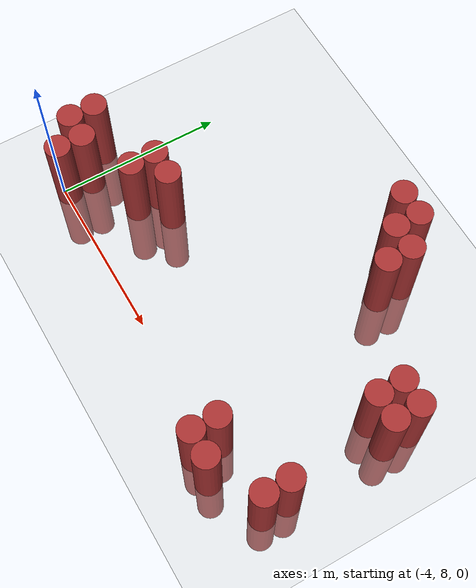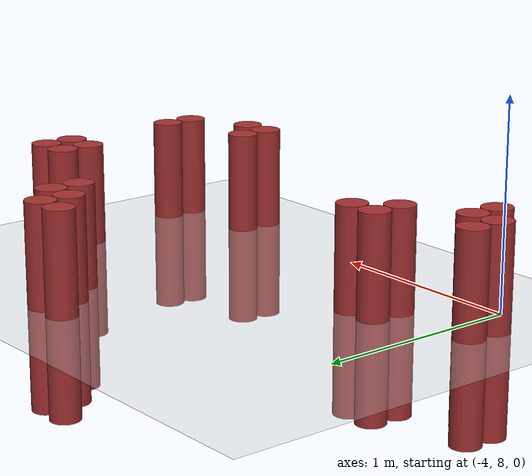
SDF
<sdf version="1.6">
 <world name="default">
  <model name="ground_plane">
   <static>1</static>
   <link name="link">
    <collision name="collision">
     <geometry><plane><normal>0 0 1</normal><size>100 100</size></plane></geometry>
     <surface><friction><ode><mu>100</mu><mu2>50</mu2></ode></friction></surface>
    </collision>
    <visual name="visual">
     <cast_shadows>0</cast_shadows>
     <geometry><plane><normal>0 0 1</normal><size>100 100</size></plane></geometry>
     <material>
      <script><uri>file://media/materials/scripts/gazebo.material</uri><name>Gazebo/Grey</name></script>
     </material>
    </visual>
   </link>
  </model>
  <model name="unit_cylinder_146">
   <static>1</static>
   <pose>-4.125000 8.175000 0.000000 0.000000 0.000000 0.000000</pose>
   <link name="link">
    <inertial>
     <mass>1</mass>
     <inertia><ixx>0.145833</ixx><ixy>0</ixy><ixz>0</ixz><iyy>0.145833</iyy><iyz>0</iyz><izz>0.125</izz></inertia>
    </inertial>
    <collision name="collision">
     <geometry><cylinder><radius>0.075000</radius><length>1</length></cylinder></geometry>
    </collision>
    <visual name="visual">
     <geometry><cylinder><radius>0.075000</radius><length>1</length></cylinder></geometry>
     <material>
      <ambient>0.648000 0.192000 0.192000 1</ambient>
      <diffuse>0.648000 0.192000 0.192000 1</diffuse>
     </material>
     <material>
      <script><name>Gazebo/Grey</name><uri>file://media/materials/scripts/gazebo.material</uri></script>
     </material>
    </visual>
    <sensor name="sensor_contact" type="contact"><contact><collision>collision</collision></contact></sensor>
   </link>
   <plugin filename="gz-sim-touchplugin-system" name="gz::sim::systems::TouchPlugin">
    <target>robot</target>
    <namespace>robot</namespace>
    <time>0.001</time>
    <enabled>true</enabled>
   </plugin>
  </model>
  <model name="unit_cylinder_147">
   <static>1</static>
   <pose>-4.125000 8.325000 0.000000 0.000000 0.000000 0.000000</pose>
   <link name="link">
    <inertial>
     <mass>1</mass>
     <inertia><ixx>0.145833</ixx><ixy>0</ixy><ixz>0</ixz><iyy>0.145833</iyy><iyz>0</iyz><izz>0.125</izz></inertia>
    </inertial>
    <collision name="collision">
     <geometry><cylinder><radius>0.075000</radius><length>1</length></cylinder></geometry>
    </collision>
    <visual name="visual">
     <geometry><cylinder><radius>0.075000</radius><length>1</length></cylinder></geometry>
     <material>
      <ambient>0.648000 0.192000 0.192000 1</ambient>
      <diffuse>0.648000 0.192000 0.192000 1</diffuse>
     </material>
     <material>
      <script><name>Gazebo/Grey</name><uri>file://media/materials/scripts/gazebo.material</uri></script>
     </material>
    </visual>
    <sensor name="sensor_contact" type="contact"><contact><collision>collision</collision></contact></sensor>
   </link>
   <plugin filename="gz-sim-touchplugin-system" name="gz::sim::systems::TouchPlugin">
    <target>robot</target>
    <namespace>robot</namespace>
    <time>0.001</time>
    <enabled>true</enabled>
   </plugin>
  </model>
  <model name="unit_cylinder_149">
   <static>1</static>
   <pose>-3.975000 8.025000 0.000000 0.000000 0.000000 0.000000</pose>
   <link name="link">
    <inertial>
     <mass>1</mass>
     <inertia><ixx>0.145833</ixx><ixy>0</ixy><ixz>0</ixz><iyy>0.145833</iyy><iyz>0</iyz><izz>0.125</izz></inertia>
    </inertial>
    <collision name="collision">
     <geometry><cylinder><radius>0.075000</radius><length>1</length></cylinder></geometry>
    </collision>
    <visual name="visual">
     <geometry><cylinder><radius>0.075000</radius><length>1</length></cylinder></geometry>
     <material>
      <ambient>0.648000 0.192000 0.192000 1</ambient>
      <diffuse>0.648000 0.192000 0.192000 1</diffuse>
     </material>
     <material>
      <script><name>Gazebo/Grey</name><uri>file://media/materials/scripts/gazebo.material</uri></script>
     </material>
    </visual>
    <sensor name="sensor_contact" type="contact"><contact><collision>collision</collision></contact></sensor>
   </link>
   <plugin filename="gz-sim-touchplugin-system" name="gz::sim::systems::TouchPlugin">
    <target>robot</target>
    <namespace>robot</namespace>
    <time>0.001</time>
    <enabled>true</enabled>
   </plugin>
  </model>
  <model name="unit_cylinder_150">
   <static>1</static>
   <pose>-3.975000 8.175000 0.000000 0.000000 0.000000 0.000000</pose>
   <link name="link">
    <inertial>
     <mass>1</mass>
     <inertia><ixx>0.145833</ixx><ixy>0</ixy><ixz>0</ixz><iyy>0.145833</iyy><iyz>0</iyz><izz>0.125</izz></inertia>
    </inertial>
    <collision name="collision">
     <geometry><cylinder><radius>0.075000</radius><length>1</length></cylinder></geometry>
    </collision>
    <visual name="visual">
     <geometry><cylinder><radius>0.075000</radius><length>1</length></cylinder></geometry>
     <material>
      <ambient>0.648000 0.192000 0.192000 1</ambient>
      <diffuse>0.648000 0.192000 0.192000 1</diffuse>
     </material>
     <material>
      <script><name>Gazebo/Grey</name><uri>file://media/materials/scripts/gazebo.material</uri></script>
     </material>
    </visual>
    <sensor name="sensor_contact" type="contact"><contact><collision>collision</collision></contact></sensor>
   </link>
   <plugin filename="gz-sim-touchplugin-system" name="gz::sim::systems::TouchPlugin">
    <target>robot</target>
    <namespace>robot</namespace>
    <time>0.001</time>
    <enabled>true</enabled>
   </plugin>
  </model>
  <model name="unit_cylinder_151">
   <static>1</static>
   <pose>-3.675000 8.325000 0.000000 0.000000 0.000000 0.000000</pose>
   <link name="link">
    <inertial>
     <mass>1</mass>
     <inertia><ixx>0.145833</ixx><ixy>0</ixy><ixz>0</ixz><iyy>0.145833</iyy><iyz>0</iyz><izz>0.125</izz></inertia>
    </inertial>
    <collision name="collision">
     <geometry><cylinder><radius>0.075000</radius><length>1</length></cylinder></geometry>
    </collision>
    <visual name="visual">
     <geometry><cylinder><radius>0.075000</radius><length>1</length></cylinder></geometry>
     <material>
      <ambient>0.648000 0.192000 0.192000 1</ambient>
      <diffuse>0.648000 0.192000 0.192000 1</diffuse>
     </material>
     <material>
      <script><name>Gazebo/Grey</name><uri>file://media/materials/scripts/gazebo.material</uri></script>
     </material>
    </visual>
    <sensor name="sensor_contact" type="contact"><contact><collision>collision</collision></contact></sensor>
   </link>
   <plugin filename="gz-sim-touchplugin-system" name="gz::sim::systems::TouchPlugin">
    <target>robot</target>
    <namespace>robot</namespace>
    <time>0.001</time>
    <enabled>true</enabled>
   </plugin>
  </model>
  <model name="unit_cylinder_152">
   <static>1</static>
   <pose>-3.675000 8.475000 0.000000 0.000000 0.000000 0.000000</pose>
   <link name="link">
    <inertial>
     <mass>1</mass>
     <inertia><ixx>0.145833</ixx><ixy>0</ixy><ixz>0</ixz><iyy>0.145833</iyy><iyz>0</iyz><izz>0.125</izz></inertia>
    </inertial>
    <collision name="collision">
     <geometry><cylinder><radius>0.075000</radius><length>1</length></cylinder></geometry>
    </collision>
    <visual name="visual">
     <geometry><cylinder><radius>0.075000</radius><length>1</length></cylinder></geometry>
     <material>
      <ambient>0.648000 0.192000 0.192000 1</ambient>
      <diffuse>0.648000 0.192000 0.192000 1</diffuse>
     </material>
     <material>
      <script><name>Gazebo/Grey</name><uri>file://media/materials/scripts/gazebo.material</uri></script>
     </material>
    </visual>
    <sensor name="sensor_contact" type="contact"><contact><collision>collision</collision></contact></sensor>
   </link>
   <plugin filename="gz-sim-touchplugin-system" name="gz::sim::systems::TouchPlugin">
    <target>robot</target>
    <namespace>robot</namespace>
    <time>0.001</time>
    <enabled>true</enabled>
   </plugin>
  </model>
  <model name="unit_cylinder_153">
   <static>1</static>
   <pose>-3.525000 8.475000 0.000000 0.000000 0.000000 0.000000</pose>
   <link name="link">
    <inertial>
     <mass>1</mass>
     <inertia><ixx>0.145833</ixx><ixy>0</ixy><ixz>0</ixz><iyy>0.145833</iyy><iyz>0</iyz><izz>0.125</izz></inertia>
    </inertial>
    <collision name="collision">
     <geometry><cylinder><radius>0.075000</radius><length>1</length></cylinder></geometry>
    </collision>
    <visual name="visual">
     <geometry><cylinder><radius>0.075000</radius><length>1</length></cylinder></geometry>
     <material>
      <ambient>0.648000 0.192000 0.192000 1</ambient>
      <diffuse>0.648000 0.192000 0.192000 1</diffuse>
     </material>
     <material>
      <script><name>Gazebo/Grey</name><uri>file://media/materials/scripts/gazebo.material</uri></script>
     </material>
    </visual>
    <sensor name="sensor_contact" type="contact"><contact><collision>collision</collision></contact></sensor>
   </link>
   <plugin filename="gz-sim-touchplugin-system" name="gz::sim::systems::TouchPlugin">
    <target>robot</target>
    <namespace>robot</namespace>
    <time>0.001</time>
    <enabled>true</enabled>
   </plugin>
  </model>
  <model name="unit_cylinder_164">
   <static>1</static>
   <pose>-2.775000 9.525000 0.000000 0.000000 0.000000 0.000000</pose>
   <link name="link">
    <inertial>
     <mass>1</mass>
     <inertia><ixx>0.145833</ixx><ixy>0</ixy><ixz>0</ixz><iyy>0.145833</iyy><iyz>0</iyz><izz>0.125</izz></inertia>
    </inertial>
    <collision name="collision">
     <geometry><cylinder><radius>0.075000</radius><length>1</length></cylinder></geometry>
    </collision>
    <visual name="visual">
     <geometry><cylinder><radius>0.075000</radius><length>1</length></cylinder></geometry>
     <material>
      <ambient>0.648000 0.192000 0.192000 1</ambient>
      <diffuse>0.648000 0.192000 0.192000 1</diffuse>
     </material>
     <material>
      <script><name>Gazebo/Grey</name><uri>file://media/materials/scripts/gazebo.material</uri></script>
     </material>
    </visual>
    <sensor name="sensor_contact" type="contact"><contact><collision>collision</collision></contact></sensor>
   </link>
   <plugin filename="gz-sim-touchplugin-system" name="gz::sim::systems::TouchPlugin">
    <target>robot</target>
    <namespace>robot</namespace>
    <time>0.001</time>
    <enabled>true</enabled>
   </plugin>
  </model>
  <model name="unit_cylinder_169">
   <static>1</static>
   <pose>-2.625000 9.375000 0.000000 0.000000 0.000000 0.000000</pose>
   <link name="link">
    <inertial>
     <mass>1</mass>
     <inertia><ixx>0.145833</ixx><ixy>0</ixy><ixz>0</ixz><iyy>0.145833</iyy><iyz>0</iyz><izz>0.125</izz></inertia>
    </inertial>
    <collision name="collision">
     <geometry><cylinder><radius>0.075000</radius><length>1</length></cylinder></geometry>
    </collision>
    <visual name="visual">
     <geometry><cylinder><radius>0.075000</radius><length>1</length></cylinder></geometry>
     <material>
      <ambient>0.648000 0.192000 0.192000 1</ambient>
      <diffuse>0.648000 0.192000 0.192000 1</diffuse>
     </material>
     <material>
      <script><name>Gazebo/Grey</name><uri>file://media/materials/scripts/gazebo.material</uri></script>
     </material>
    </visual>
    <sensor name="sensor_contact" type="contact"><contact><collision>collision</collision></contact></sensor>
   </link>
   <plugin filename="gz-sim-touchplugin-system" name="gz::sim::systems::TouchPlugin">
    <target>robot</target>
    <namespace>robot</namespace>
    <time>0.001</time>
    <enabled>true</enabled>
   </plugin>
  </model>
  <model name="unit_cylinder_170">
   <static>1</static>
   <pose>-2.625000 9.525000 0.000000 0.000000 0.000000 0.000000</pose>
   <link name="link">
    <inertial>
     <mass>1</mass>
     <inertia><ixx>0.145833</ixx><ixy>0</ixy><ixz>0</ixz><iyy>0.145833</iyy><iyz>0</iyz><izz>0.125</izz></inertia>
    </inertial>
    <collision name="collision">
     <geometry><cylinder><radius>0.075000</radius><length>1</length></cylinder></geometry>
    </collision>
    <visual name="visual">
     <geometry><cylinder><radius>0.075000</radius><length>1</length></cylinder></geometry>
     <material>
      <ambient>0.648000 0.192000 0.192000 1</ambient>
      <diffuse>0.648000 0.192000 0.192000 1</diffuse>
     </material>
     <material>
      <script><name>Gazebo/Grey</name><uri>file://media/materials/scripts/gazebo.material</uri></script>
     </material>
    </visual>
    <sensor name="sensor_contact" type="contact"><contact><collision>collision</collision></contact></sensor>
   </link>
   <plugin filename="gz-sim-touchplugin-system" name="gz::sim::systems::TouchPlugin">
    <target>robot</target>
    <namespace>robot</namespace>
    <time>0.001</time>
    <enabled>true</enabled>
   </plugin>
  </model>
  <model name="unit_cylinder_176">
   <static>1</static>
   <pose>-2.475000 9.225000 0.000000 0.000000 0.000000 0.000000</pose>
   <link name="link">
    <inertial>
     <mass>1</mass>
     <inertia><ixx>0.145833</ixx><ixy>0</ixy><ixz>0</ixz><iyy>0.145833</iyy><iyz>0</iyz><izz>0.125</izz></inertia>
    </inertial>
    <collision name="collision">
     <geometry><cylinder><radius>0.075000</radius><length>1</length></cylinder></geometry>
    </collision>
    <visual name="visual">
     <geometry><cylinder><radius>0.075000</radius><length>1</length></cylinder></geometry>
     <material>
      <ambient>0.648000 0.192000 0.192000 1</ambient>
      <diffuse>0.648000 0.192000 0.192000 1</diffuse>
     </material>
     <material>
      <script><name>Gazebo/Grey</name><uri>file://media/materials/scripts/gazebo.material</uri></script>
     </material>
    </visual>
    <sensor name="sensor_contact" type="contact"><contact><collision>collision</collision></contact></sensor>
   </link>
   <plugin filename="gz-sim-touchplugin-system" name="gz::sim::systems::TouchPlugin">
    <target>robot</target>
    <namespace>robot</namespace>
    <time>0.001</time>
    <enabled>true</enabled>
   </plugin>
  </model>
  <model name="unit_cylinder_177">
   <static>1</static>
   <pose>-2.475000 9.375000 0.000000 0.000000 0.000000 0.000000</pose>
   <link name="link">
    <inertial>
     <mass>1</mass>
     <inertia><ixx>0.145833</ixx><ixy>0</ixy><ixz>0</ixz><iyy>0.145833</iyy><iyz>0</iyz><izz>0.125</izz></inertia>
    </inertial>
    <collision name="collision">
     <geometry><cylinder><radius>0.075000</radius><length>1</length></cylinder></geometry>
    </collision>
    <visual name="visual">
     <geometry><cylinder><radius>0.075000</radius><length>1</length></cylinder></geometry>
     <material>
      <ambient>0.648000 0.192000 0.192000 1</ambient>
      <diffuse>0.648000 0.192000 0.192000 1</diffuse>
     </material>
     <material>
      <script><name>Gazebo/Grey</name><uri>file://media/materials/scripts/gazebo.material</uri></script>
     </material>
    </visual>
    <sensor name="sensor_contact" type="contact"><contact><collision>collision</collision></contact></sensor>
   </link>
   <plugin filename="gz-sim-touchplugin-system" name="gz::sim::systems::TouchPlugin">
    <target>robot</target>
    <namespace>robot</namespace>
    <time>0.001</time>
    <enabled>true</enabled>
   </plugin>
  </model>
  <model name="unit_cylinder_187">
   <static>1</static>
   <pose>-2.175000 7.875000 0.000000 0.000000 0.000000 0.000000</pose>
   <link name="link">
    <inertial>
     <mass>1</mass>
     <inertia><ixx>0.145833</ixx><ixy>0</ixy><ixz>0</ixz><iyy>0.145833</iyy><iyz>0</iyz><izz>0.125</izz></inertia>
    </inertial>
    <collision name="collision">
     <geometry><cylinder><radius>0.075000</radius><length>1</length></cylinder></geometry>
    </collision>
    <visual name="visual">
     <geometry><cylinder><radius>0.075000</radius><length>1</length></cylinder></geometry>
     <material>
      <ambient>0.648000 0.192000 0.192000 1</ambient>
      <diffuse>0.648000 0.192000 0.192000 1</diffuse>
     </material>
     <material>
      <script><name>Gazebo/Grey</name><uri>file://media/materials/scripts/gazebo.material</uri></script>
     </material>
    </visual>
    <sensor name="sensor_contact" type="contact"><contact><collision>collision</collision></contact></sensor>
   </link>
   <plugin filename="gz-sim-touchplugin-system" name="gz::sim::systems::TouchPlugin">
    <target>robot</target>
    <namespace>robot</namespace>
    <time>0.001</time>
    <enabled>true</enabled>
   </plugin>
  </model>
  <model name="unit_cylinder_188">
   <static>1</static>
   <pose>-2.175000 8.025000 0.000000 0.000000 0.000000 0.000000</pose>
   <link name="link">
    <inertial>
     <mass>1</mass>
     <inertia><ixx>0.145833</ixx><ixy>0</ixy><ixz>0</ixz><iyy>0.145833</iyy><iyz>0</iyz><izz>0.125</izz></inertia>
    </inertial>
    <collision name="collision">
     <geometry><cylinder><radius>0.075000</radius><length>1</length></cylinder></geometry>
    </collision>
    <visual name="visual">
     <geometry><cylinder><radius>0.075000</radius><length>1</length></cylinder></geometry>
     <material>
      <ambient>0.648000 0.192000 0.192000 1</ambient>
      <diffuse>0.648000 0.192000 0.192000 1</diffuse>
     </material>
     <material>
      <script><name>Gazebo/Grey</name><uri>file://media/materials/scripts/gazebo.material</uri></script>
     </material>
    </visual>
    <sensor name="sensor_contact" type="contact"><contact><collision>collision</collision></contact></sensor>
   </link>
   <plugin filename="gz-sim-touchplugin-system" name="gz::sim::systems::TouchPlugin">
    <target>robot</target>
    <namespace>robot</namespace>
    <time>0.001</time>
    <enabled>true</enabled>
   </plugin>
  </model>
  <model name="unit_cylinder_190">
   <static>1</static>
   <pose>-2.025000 7.875000 0.000000 0.000000 0.000000 0.000000</pose>
   <link name="link">
    <inertial>
     <mass>1</mass>
     <inertia><ixx>0.145833</ixx><ixy>0</ixy><ixz>0</ixz><iyy>0.145833</iyy><iyz>0</iyz><izz>0.125</izz></inertia>
    </inertial>
    <collision name="collision">
     <geometry><cylinder><radius>0.075000</radius><length>1</length></cylinder></geometry>
    </collision>
    <visual name="visual">
     <geometry><cylinder><radius>0.075000</radius><length>1</length></cylinder></geometry>
     <material>
      <ambient>0.648000 0.192000 0.192000 1</ambient>
      <diffuse>0.648000 0.192000 0.192000 1</diffuse>
     </material>
     <material>
      <script><name>Gazebo/Grey</name><uri>file://media/materials/scripts/gazebo.material</uri></script>
     </material>
    </visual>
    <sensor name="sensor_contact" type="contact"><contact><collision>collision</collision></contact></sensor>
   </link>
   <plugin filename="gz-sim-touchplugin-system" name="gz::sim::systems::TouchPlugin">
    <target>robot</target>
    <namespace>robot</namespace>
    <time>0.001</time>
    <enabled>true</enabled>
   </plugin>
  </model>
  <model name="unit_cylinder_198">
   <static>1</static>
   <pose>-1.875000 8.775000 0.000000 0.000000 0.000000 0.000000</pose>
   <link name="link">
    <inertial>
     <mass>1</mass>
     <inertia><ixx>0.145833</ixx><ixy>0</ixy><ixz>0</ixz><iyy>0.145833</iyy><iyz>0</iyz><izz>0.125</izz></inertia>
    </inertial>
    <collision name="collision">
     <geometry><cylinder><radius>0.075000</radius><length>1</length></cylinder></geometry>
    </collision>
    <visual name="visual">
     <geometry><cylinder><radius>0.075000</radius><length>1</length></cylinder></geometry>
     <material>
      <ambient>0.648000 0.192000 0.192000 1</ambient>
      <diffuse>0.648000 0.192000 0.192000 1</diffuse>
     </material>
     <material>
      <script><name>Gazebo/Grey</name><uri>file://media/materials/scripts/gazebo.material</uri></script>
     </material>
    </visual>
    <sensor name="sensor_contact" type="contact"><contact><collision>collision</collision></contact></sensor>
   </link>
   <plugin filename="gz-sim-touchplugin-system" name="gz::sim::systems::TouchPlugin">
    <target>robot</target>
    <namespace>robot</namespace>
    <time>0.001</time>
    <enabled>true</enabled>
   </plugin>
  </model>
  <model name="unit_cylinder_199">
   <static>1</static>
   <pose>-1.875000 8.925000 0.000000 0.000000 0.000000 0.000000</pose>
   <link name="link">
    <inertial>
     <mass>1</mass>
     <inertia><ixx>0.145833</ixx><ixy>0</ixy><ixz>0</ixz><iyy>0.145833</iyy><iyz>0</iyz><izz>0.125</izz></inertia>
    </inertial>
    <collision name="collision">
     <geometry><cylinder><radius>0.075000</radius><length>1</length></cylinder></geometry>
    </collision>
    <visual name="visual">
     <geometry><cylinder><radius>0.075000</radius><length>1</length></cylinder></geometry>
     <material>
      <ambient>0.648000 0.192000 0.192000 1</ambient>
      <diffuse>0.648000 0.192000 0.192000 1</diffuse>
     </material>
     <material>
      <script><name>Gazebo/Grey</name><uri>file://media/materials/scripts/gazebo.material</uri></script>
     </material>
    </visual>
    <sensor name="sensor_contact" type="contact"><contact><collision>collision</collision></contact></sensor>
   </link>
   <plugin filename="gz-sim-touchplugin-system" name="gz::sim::systems::TouchPlugin">
    <target>robot</target>
    <namespace>robot</namespace>
    <time>0.001</time>
    <enabled>true</enabled>
   </plugin>
  </model>
  <model name="unit_cylinder_208">
   <static>1</static>
   <pose>-1.725000 8.025000 0.000000 0.000000 0.000000 0.000000</pose>
   <link name="link">
    <inertial>
     <mass>1</mass>
     <inertia><ixx>0.145833</ixx><ixy>0</ixy><ixz>0</ixz><iyy>0.145833</iyy><iyz>0</iyz><izz>0.125</izz></inertia>
    </inertial>
    <collision name="collision">
     <geometry><cylinder><radius>0.075000</radius><length>1</length></cylinder></geometry>
    </collision>
    <visual name="visual">
     <geometry><cylinder><radius>0.075000</radius><length>1</length></cylinder></geometry>
     <material>
      <ambient>0.648000 0.192000 0.192000 1</ambient>
      <diffuse>0.648000 0.192000 0.192000 1</diffuse>
     </material>
     <material>
      <script><name>Gazebo/Grey</name><uri>file://media/materials/scripts/gazebo.material</uri></script>
     </material>
    </visual>
    <sensor name="sensor_contact" type="contact"><contact><collision>collision</collision></contact></sensor>
   </link>
   <plugin filename="gz-sim-touchplugin-system" name="gz::sim::systems::TouchPlugin">
    <target>robot</target>
    <namespace>robot</namespace>
    <time>0.001</time>
    <enabled>true</enabled>
   </plugin>
  </model>
  <model name="unit_cylinder_209">
   <static>1</static>
   <pose>-1.725000 8.175000 0.000000 0.000000 0.000000 0.000000</pose>
   <link name="link">
    <inertial>
     <mass>1</mass>
     <inertia><ixx>0.145833</ixx><ixy>0</ixy><ixz>0</ixz><iyy>0.145833</iyy><iyz>0</iyz><izz>0.125</izz></inertia>
    </inertial>
    <collision name="collision">
     <geometry><cylinder><radius>0.075000</radius><length>1</length></cylinder></geometry>
    </collision>
    <visual name="visual">
     <geometry><cylinder><radius>0.075000</radius><length>1</length></cylinder></geometry>
     <material>
      <ambient>0.648000 0.192000 0.192000 1</ambient>
      <diffuse>0.648000 0.192000 0.192000 1</diffuse>
     </material>
     <material>
      <script><name>Gazebo/Grey</name><uri>file://media/materials/scripts/gazebo.material</uri></script>
     </material>
    </visual>
    <sensor name="sensor_contact" type="contact"><contact><collision>collision</collision></contact></sensor>
   </link>
   <plugin filename="gz-sim-touchplugin-system" name="gz::sim::systems::TouchPlugin">
    <target>robot</target>
    <namespace>robot</namespace>
    <time>0.001</time>
    <enabled>true</enabled>
   </plugin>
  </model>
  <model name="unit_cylinder_210">
   <static>1</static>
   <pose>-1.725000 8.775000 0.000000 0.000000 0.000000 0.000000</pose>
   <link name="link">
    <inertial>
     <mass>1</mass>
     <inertia><ixx>0.145833</ixx><ixy>0</ixy><ixz>0</ixz><iyy>0.145833</iyy><iyz>0</iyz><izz>0.125</izz></inertia>
    </inertial>
    <collision name="collision">
     <geometry><cylinder><radius>0.075000</radius><length>1</length></cylinder></geometry>
    </collision>
    <visual name="visual">
     <geometry><cylinder><radius>0.075000</radius><length>1</length></cylinder></geometry>
     <material>
      <ambient>0.648000 0.192000 0.192000 1</ambient>
      <diffuse>0.648000 0.192000 0.192000 1</diffuse>
     </material>
     <material>
      <script><name>Gazebo/Grey</name><uri>file://media/materials/scripts/gazebo.material</uri></script>
     </material>
    </visual>
    <sensor name="sensor_contact" type="contact"><contact><collision>collision</collision></contact></sensor>
   </link>
   <plugin filename="gz-sim-touchplugin-system" name="gz::sim::systems::TouchPlugin">
    <target>robot</target>
    <namespace>robot</namespace>
    <time>0.001</time>
    <enabled>true</enabled>
   </plugin>
  </model>
  <model name="unit_cylinder_211">
   <static>1</static>
   <pose>-1.725000 8.925000 0.000000 0.000000 0.000000 0.000000</pose>
   <link name="link">
    <inertial>
     <mass>1</mass>
     <inertia><ixx>0.145833</ixx><ixy>0</ixy><ixz>0</ixz><iyy>0.145833</iyy><iyz>0</iyz><izz>0.125</izz></inertia>
    </inertial>
    <collision name="collision">
     <geometry><cylinder><radius>0.075000</radius><length>1</length></cylinder></geometry>
    </collision>
    <visual name="visual">
     <geometry><cylinder><radius>0.075000</radius><length>1</length></cylinder></geometry>
     <material>
      <ambient>0.648000 0.192000 0.192000 1</ambient>
      <diffuse>0.648000 0.192000 0.192000 1</diffuse>
     </material>
     <material>
      <script><name>Gazebo/Grey</name><uri>file://media/materials/scripts/gazebo.material</uri></script>
     </material>
    </visual>
    <sensor name="sensor_contact" type="contact"><contact><collision>collision</collision></contact></sensor>
   </link>
   <plugin filename="gz-sim-touchplugin-system" name="gz::sim::systems::TouchPlugin">
    <target>robot</target>
    <namespace>robot</namespace>
    <time>0.001</time>
    <enabled>true</enabled>
   </plugin>
  </model>
 </world>
</sdf>
